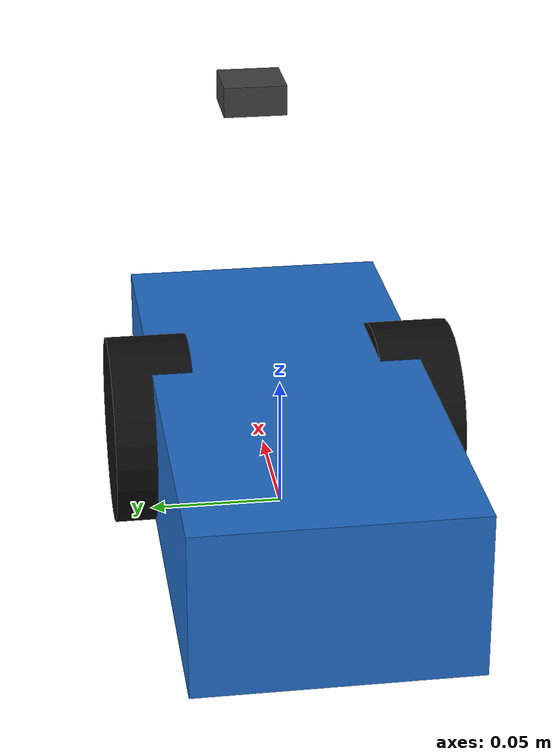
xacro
<?xml version="1.0"?>
<robot xmlns:xacro="http://www.ros.org/wiki/xacro" name="buddy">
  <!-- Measured dimensions use the wheel axle midpoint as the base_link origin. -->
  <xacro:arg name="chassis_length" default="0.22"/>
  <xacro:arg name="chassis_width" default="0.10"/>
  <xacro:arg name="chassis_height" default="0.06"/>
  <xacro:arg name="chassis_x" default="-0.03"/>
  <xacro:arg name="wheel_radius" default="0.035"/>
  <xacro:arg name="wheel_width" default="0.03"/>
  <xacro:arg name="wheel_separation" default="0.10"/>
  <xacro:arg name="camera_x" default="0.08"/>
  <xacro:arg name="camera_z" default="0.105"/>
  <xacro:arg name="distance_sensor_x" default="0.08"/>
  <xacro:arg name="distance_sensor_z" default="0.015"/>
  <xacro:arg name="caster_x" default="-0.12"/>

  <xacro:property name="chassis_length" value="$(arg chassis_length)"/>
  <xacro:property name="chassis_width" value="$(arg chassis_width)"/>
  <xacro:property name="chassis_height" value="$(arg chassis_height)"/>
  <xacro:property name="wheel_radius" value="$(arg wheel_radius)"/>
  <xacro:property name="wheel_width" value="$(arg wheel_width)"/>
  <xacro:property name="wheel_separation" value="$(arg wheel_separation)"/>

  <material name="buddy_blue">
    <color rgba="0.12 0.42 0.78 1.0"/>
  </material>
  <material name="wheel_black">
    <color rgba="0.05 0.05 0.05 1.0"/>
  </material>
  <material name="sensor_gray">
    <color rgba="0.25 0.25 0.25 1.0"/>
  </material>

  <!-- REP-105 ground-level robot origin: x forward, y left, z up. -->
  <link name="base_footprint"/>

  <link name="base_link">
    <visual>
      <origin xyz="$(arg chassis_x) 0 0" rpy="0 0 0"/>
      <geometry>
        <box size="${chassis_length} ${chassis_width} ${chassis_height}"/>
      </geometry>
      <material name="buddy_blue"/>
    </visual>
    <collision>
      <origin xyz="$(arg chassis_x) 0 0" rpy="0 0 0"/>
      <geometry>
        <box size="${chassis_length} ${chassis_width} ${chassis_height}"/>
      </geometry>
    </collision>
  </link>
  <joint name="base_footprint_joint" type="fixed">
    <parent link="base_footprint"/>
    <child link="base_link"/>
    <origin xyz="0 0 ${wheel_radius}" rpy="0 0 0"/>
  </joint>

  <xacro:macro name="wheel" params="side sign">
    <link name="${side}_wheel_link">
      <visual>
        <origin rpy="1.57079632679 0 0"/>
        <geometry>
          <cylinder radius="${wheel_radius}" length="${wheel_width}"/>
        </geometry>
        <material name="wheel_black"/>
      </visual>
      <collision>
        <origin rpy="1.57079632679 0 0"/>
        <geometry>
          <cylinder radius="${wheel_radius}" length="${wheel_width}"/>
        </geometry>
      </collision>
    </link>
    <!-- Fixed until wheel encoders provide joint positions in the odometry step. -->
    <joint name="${side}_wheel_joint" type="fixed">
      <parent link="base_link"/>
      <child link="${side}_wheel_link"/>
      <origin
        xyz="0 ${sign * wheel_separation / 2.0} 0"
        rpy="0 0 0"/>
    </joint>
  </xacro:macro>

  <xacro:wheel side="left" sign="1"/>
  <xacro:wheel side="right" sign="-1"/>

  <link name="caster_link">
    <visual>
      <geometry>
        <sphere radius="0.012"/>
      </geometry>
      <material name="wheel_black"/>
    </visual>
  </link>
  <joint name="caster_joint" type="fixed">
    <parent link="base_link"/>
    <child link="caster_link"/>
    <origin
      xyz="$(arg caster_x) 0 ${0.012 - wheel_radius}"
      rpy="0 0 0"/>
  </joint>

  <link name="camera_link">
    <visual>
      <geometry>
        <box size="0.025 0.025 0.012"/>
      </geometry>
      <material name="sensor_gray"/>
    </visual>
  </link>
  <joint name="camera_joint" type="fixed">
    <parent link="base_link"/>
    <child link="camera_link"/>
    <origin xyz="$(arg camera_x) 0 $(arg camera_z)" rpy="0 0 0"/>
  </joint>

  <link name="camera_optical_frame"/>
  <joint name="camera_optical_joint" type="fixed">
    <parent link="camera_link"/>
    <child link="camera_optical_frame"/>
    <origin xyz="0 0 0" rpy="-1.57079632679 0 -1.57079632679"/>
  </joint>

  <link name="front_distance_sensor_link">
    <visual>
      <geometry>
        <box size="0.018 0.012 0.006"/>
      </geometry>
      <material name="sensor_gray"/>
    </visual>
  </link>
  <joint name="front_distance_sensor_joint" type="fixed">
    <parent link="base_link"/>
    <child link="front_distance_sensor_link"/>
    <origin
      xyz="$(arg distance_sensor_x) 0 $(arg distance_sensor_z)"
      rpy="0 0 0"/>
  </joint>
</robot>
